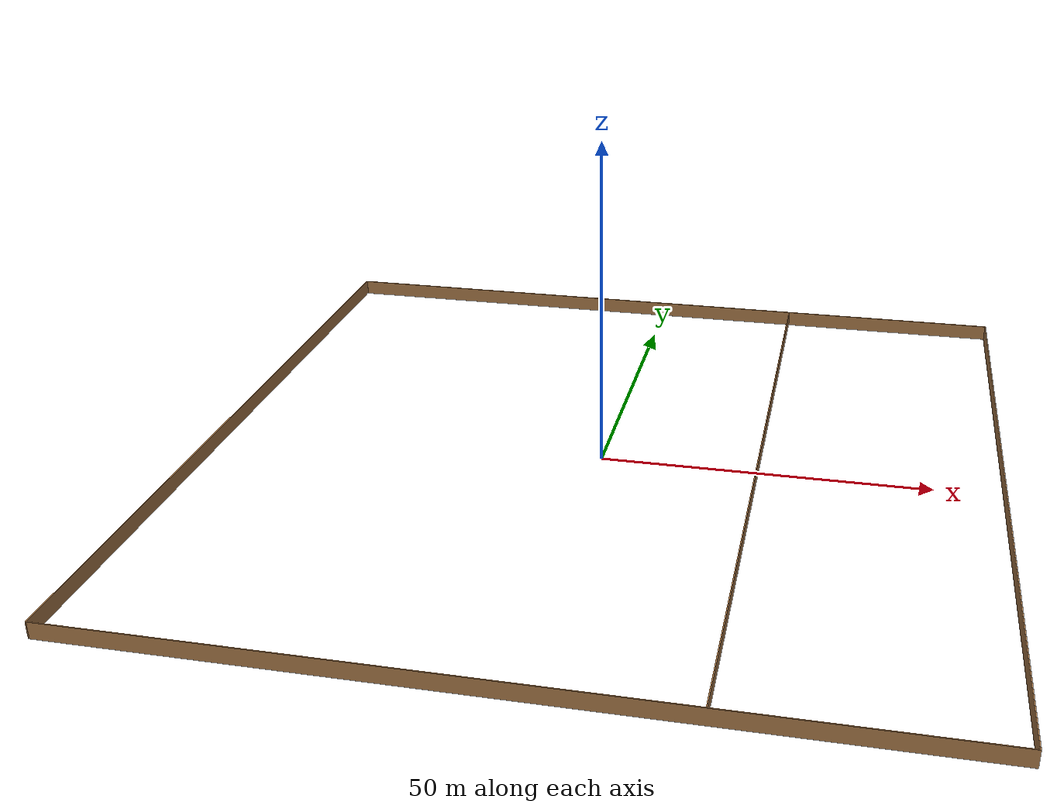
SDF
<?xml version='1.0'?>
<sdf version='1.5'>
  <model name='map_final_frame_1'>
    <pose>0 0 0 0 -0 0</pose>
    <link name='Wall_0'>
      <collision name='Wall_0_Collision'>
        <geometry>
          <box>
            <size>120.15 0.15 2.5</size>
          </box>
        </geometry>
        <pose>0 0 1.25 0 -0 0</pose>
      </collision>
      <visual name='Wall_0_Visual'>
        <pose>0 0 1.25 0 -0 0</pose>
        <geometry>
          <box>
            <size>120.15 0.15 2.5</size>
          </box>
        </geometry>
        <material>
          <script>
            <uri>file://media/materials/scripts/gazebo.material</uri>
            <name>Gazebo/Wood</name>
          </script>
          <ambient>1 1 1 1</ambient>
        </material>
      </visual>
      <pose>0 60 0 0 -0 0</pose>
    </link>
    <link name='Wall_1'>
      <collision name='Wall_1_Collision'>
        <geometry>
          <box>
            <size>120.15 0.15 2.5</size>
          </box>
        </geometry>
        <pose>0 0 1.25 0 -0 0</pose>
      </collision>
      <visual name='Wall_1_Visual'>
        <pose>0 0 1.25 0 -0 0</pose>
        <geometry>
          <box>
            <size>120.15 0.15 2.5</size>
          </box>
        </geometry>
        <material>
          <script>
            <uri>file://media/materials/scripts/gazebo.material</uri>
            <name>Gazebo/Wood</name>
          </script>
          <ambient>1 1 1 1</ambient>
        </material>
      </visual>
      <pose>60 0 0 0 0 -1.5708</pose>
    </link>
    <link name='Wall_2'>
      <collision name='Wall_2_Collision'>
        <geometry>
          <box>
            <size>120.15 0.15 2.5</size>
          </box>
        </geometry>
        <pose>0 0 1.25 0 -0 0</pose>
      </collision>
      <visual name='Wall_2_Visual'>
        <pose>0 0 1.25 0 -0 0</pose>
        <geometry>
          <box>
            <size>120.15 0.15 2.5</size>
          </box>
        </geometry>
        <material>
          <script>
            <uri>file://media/materials/scripts/gazebo.material</uri>
            <name>Gazebo/Wood</name>
          </script>
          <ambient>1 1 1 1</ambient>
        </material>
      </visual>
      <pose>0 -60 0 0 -0 3.14159</pose>
    </link>
    <link name='Wall_3'>
      <collision name='Wall_3_Collision'>
        <geometry>
          <box>
            <size>120.15 0.15 2.5</size>
          </box>
        </geometry>
        <pose>0 0 1.25 0 -0 0</pose>
      </collision>
      <visual name='Wall_3_Visual'>
        <pose>0 0 1.25 0 -0 0</pose>
        <geometry>
          <box>
            <size>120.15 0.15 2.5</size>
          </box>
        </geometry>
        <material>
          <script>
            <uri>file://media/materials/scripts/gazebo.material</uri>
            <name>Gazebo/Wood</name>
          </script>
          <ambient>1 1 1 1</ambient>
        </material>
      </visual>
      <pose>-60 0 0 0 -0 1.5708</pose>
    </link>
    <link name='Wall_5'>
      <collision name='Wall_5_Collision'>
        <geometry>
          <box>
            <size>120.15 0.15 2.5</size>
          </box>
        </geometry>
        <pose>0 0 1.25 0 -0 0</pose>
      </collision>
      <visual name='Wall_5_Visual'>
        <pose>0 0 1.25 0 -0 0</pose>
        <geometry>
          <box>
            <size>120.15 0.15 2.5</size>
          </box>
        </geometry>
        <material>
          <script>
            <uri>file://media/materials/scripts/gazebo.material</uri>
            <name>Gazebo/Wood</name>
          </script>
          <ambient>1 1 1 1</ambient>
        </material>
      </visual>
      <pose>24 0 0 0 0 -1.5708</pose>
    </link>
    <static>1</static>
  </model>
</sdf>
